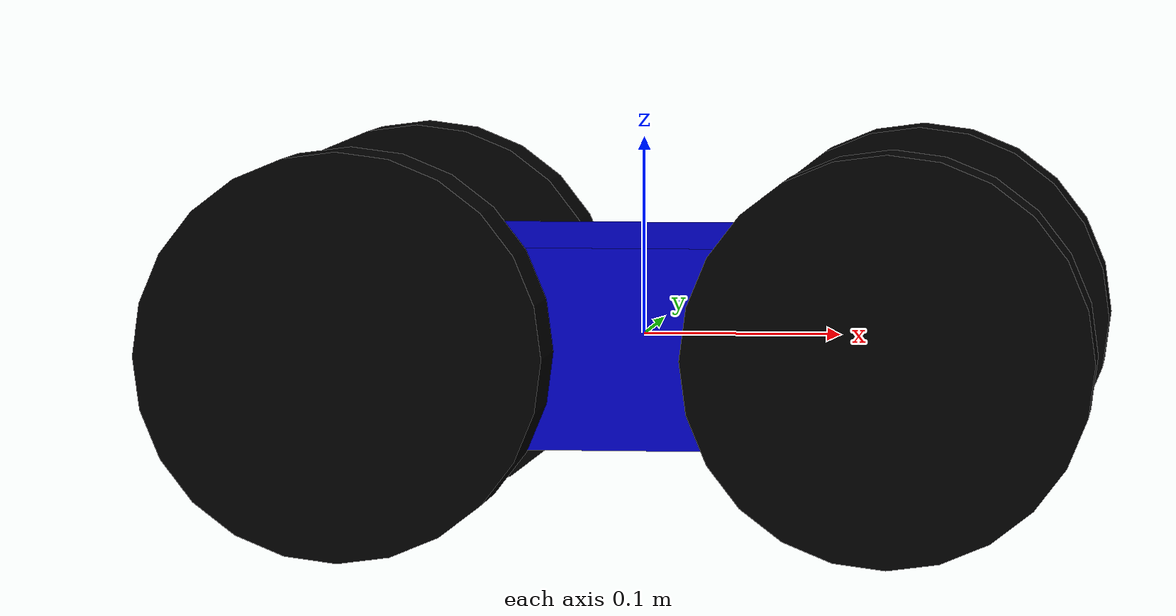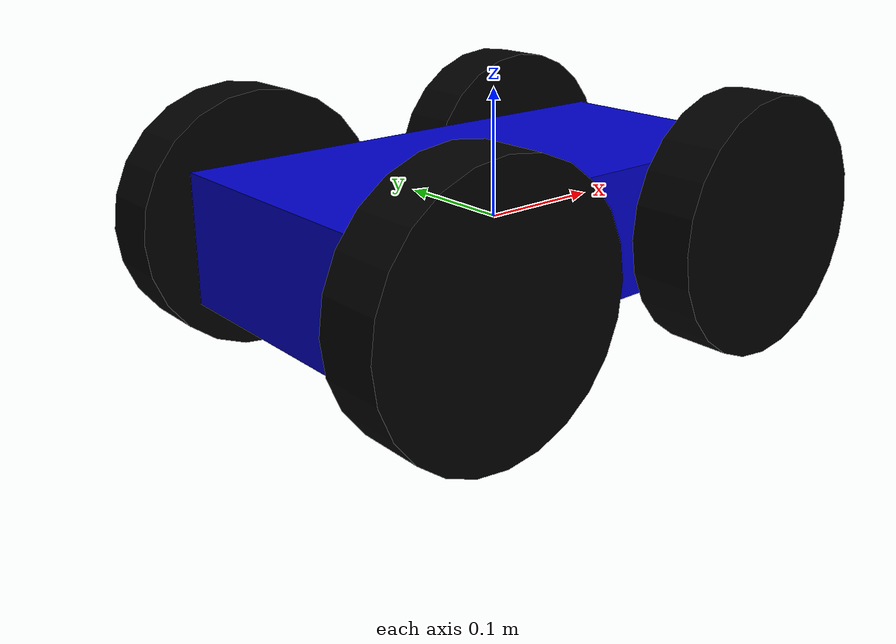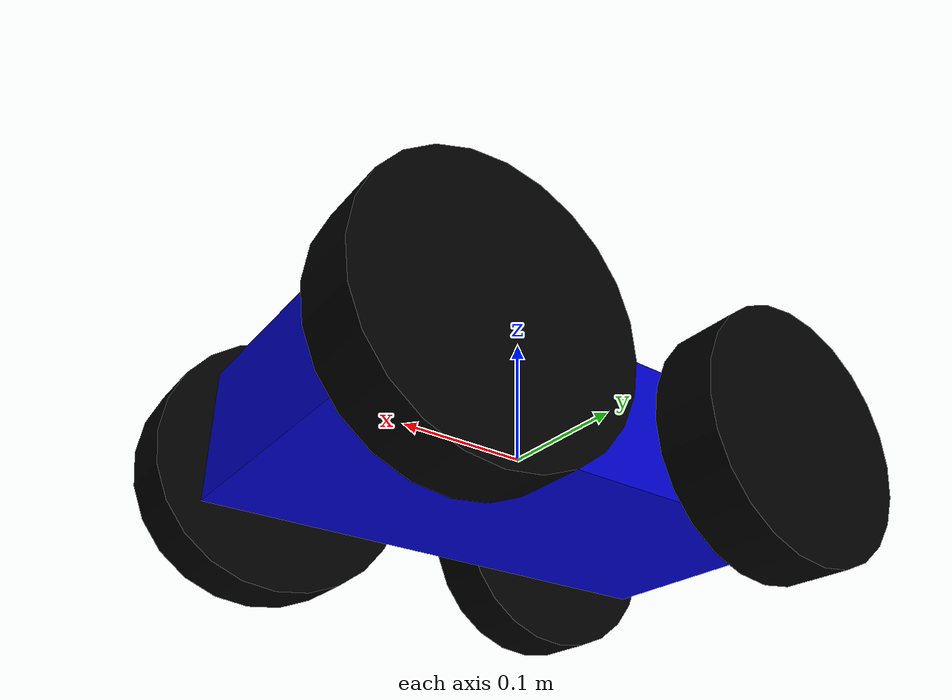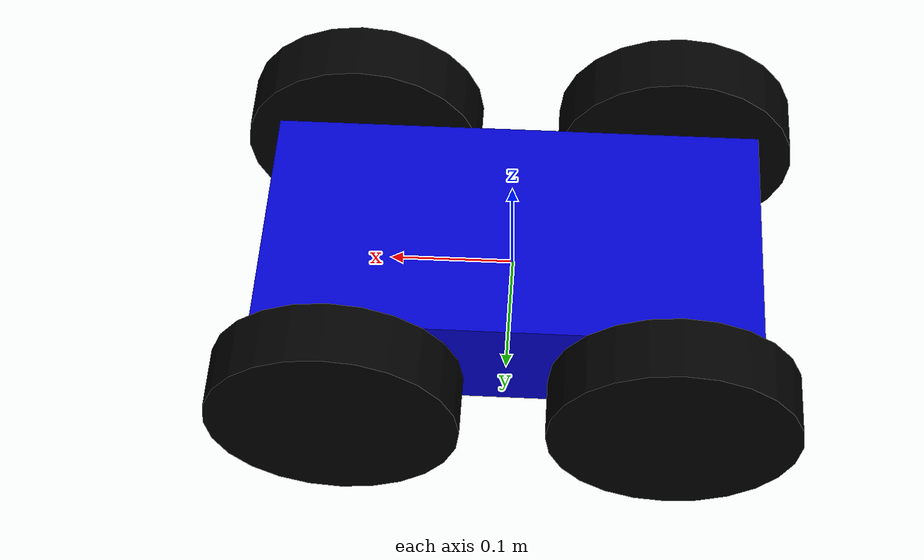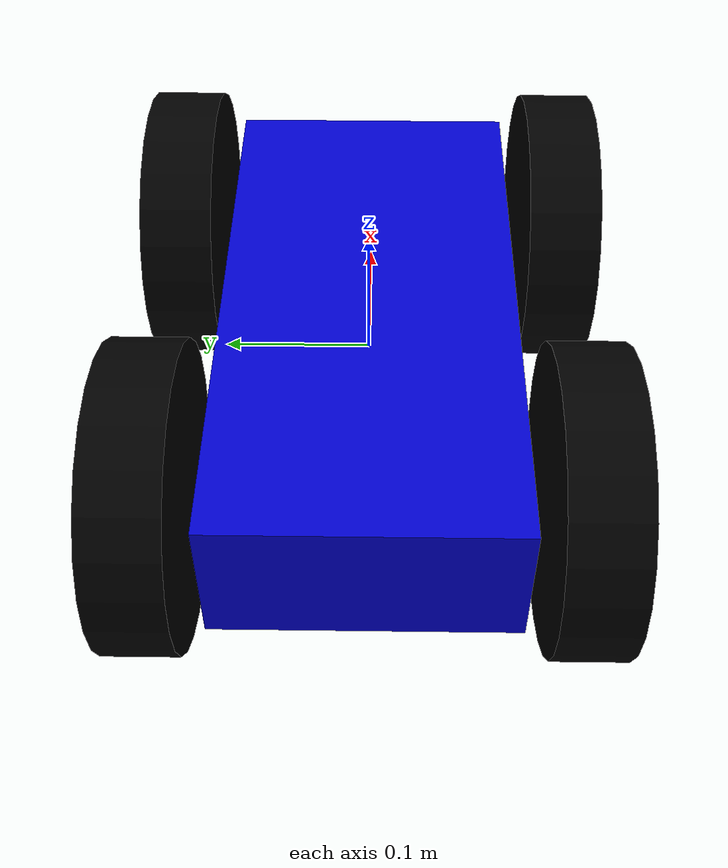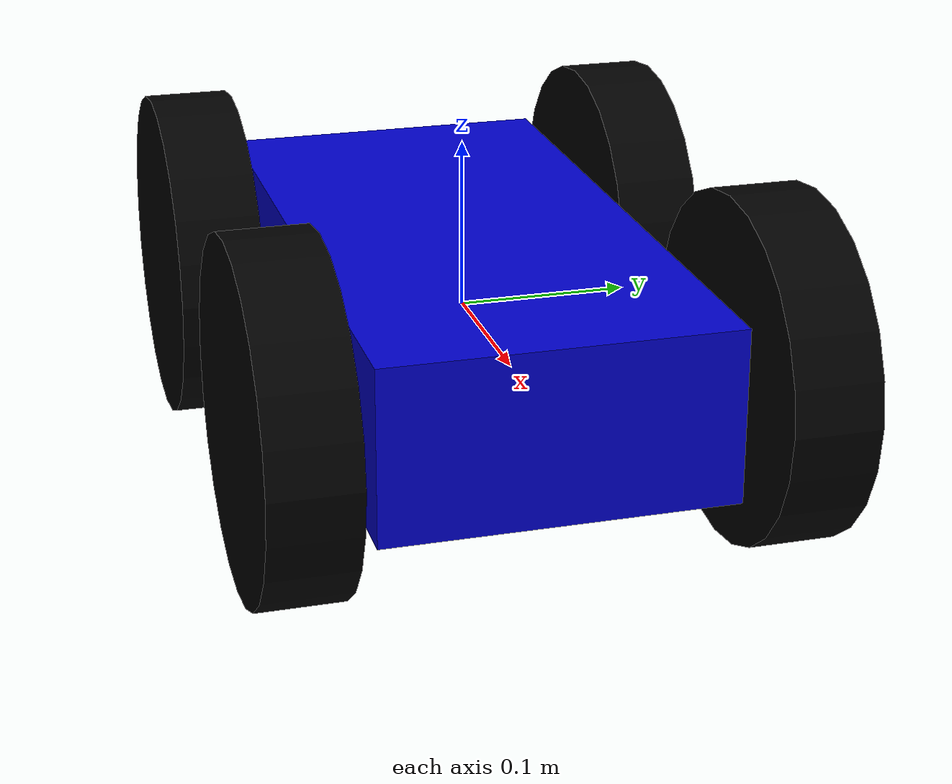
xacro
<?xml version="1.0"?>
<robot name="roscontrol" xmlns:xacro="http://ros.org/wiki/xacro">

  <xacro:property name="width" value="0.2" />
  <xacro:property name="leglen" value="0.25" />
  <xacro:property name="polelen" value="0.2" />
  <xacro:property name="bodylen" value="0.4" />
  <xacro:property name="height" value="0.1" />

  <xacro:property name="baselen" value="0.4" />
  <xacro:property name="wheeldiam" value="0.2" />
  <xacro:property name="wheelwidth" value="0.05" />
  <xacro:property name="pi" value="3.1415" />

  <material name="blue">
    <color rgba="0 0 0.8 1"/>
  </material>

  <material name="black">
    <color rgba="0 0 0 1"/>
  </material>

  <material name="white">
    <color rgba="1 1 1 1"/>
  </material>

  <xacro:macro name="default_inertial" params="mass">
    <inertial>
      <mass value="${mass}" />
      <inertia ixx="1.0" ixy="0.0" ixz="0.0" iyy="1.0" iyz="0.0" izz="1.0" />
    </inertial>
  </xacro:macro>

  <link name="base_link">
    <visual>
      <geometry>
        <box size="${bodylen} ${width} ${height}" />
      </geometry>
      <material name="blue"/>
    </visual>
    <collision>
      <geometry>
        <box size="${bodylen} ${width} ${height}" />
      </geometry>
    </collision>
    <!-- comment out inertial mass for base_link since it causes error -->
    <xacro:default_inertial mass="10"/>
  </link>

    <link name="inertial_base_link">

      <xacro:default_inertial mass="10"/>

    </link>
    <joint name="inertial_base_link_joint" type="fixed">
      <axis xyz="0 0 0" rpy="0 0 0" />
      <parent link="base_link"/>

      <child link="inertial_base_link"/>
      <origin xyz="0 0 0" rpy="0 0 0"/>
    </joint>

  <xacro:macro name="wheel" params="prefix suffix reflect reflect2">

    <link name="${prefix}_${suffix}_wheel">
      <visual>
        <origin xyz="0 0 0" rpy="${pi/2} 0 0" />
        <geometry>
          <cylinder radius="${wheeldiam/2}" length="${wheelwidth}"/>
        </geometry>
        <material name="black"/>
      </visual>
      <collision>
        <origin xyz="0 0 0" rpy="${pi/2} 0 0" />
        <geometry>
          <cylinder radius="${wheeldiam/2}" length="${wheelwidth}"/>
        </geometry>
      </collision>
      <xacro:default_inertial mass="1"/>
    </link>
    <joint name="${prefix}_${suffix}_wheel_joint" type="continuous">
      <axis xyz="0 1 0" rpy="0 0 0" />
      <parent link="base_link"/>

      <child link="${prefix}_${suffix}_wheel"/>
      <origin xyz="${baselen*reflect/3} ${(width+wheelwidth/2+.05)*reflect2/2} 0" rpy="0 0 0"/>
    </joint>

    <!-- This block provides the simulator (Gazebo) with information on a few additional
    physical properties. See http://gazebosim.org/tutorials/?tut=ros_urdf for more-->
    <gazebo reference="${prefix}_${suffix}_wheel">
      <mu1 value="200.0"/>
      <mu2 value="100.0"/>
      <kp value="10000000.0" />
      <kd value="1.0" />
      <material>Gazebo/Grey</material>
    </gazebo>

    <!-- This block connects the wheel joint to an actuator (motor), which informs both
    simulation and visualization of the robot -->
    <transmission name="${prefix}_${suffix}_wheel_trans">
      <type>transmission_interface/SimpleTransmission</type>
      <actuator name="${prefix}_${suffix}_wheel_motor">
        <mechanicalReduction>1</mechanicalReduction>
      </actuator>
      <joint name="${prefix}_${suffix}_wheel_joint">
        <hardwareInterface>hardware_interface/VelocityJointInterface</hardwareInterface>
      </joint>
    </transmission>

  </xacro:macro>

    <xacro:wheel prefix="right" suffix="front" reflect="1" reflect2="-1"/>
    <xacro:wheel prefix="right" suffix="back" reflect="-1" reflect2="-1"/>
    <xacro:wheel prefix="left" suffix="front" reflect="1" reflect2="1"/>
    <xacro:wheel prefix="left" suffix="back" reflect="-1" reflect2="1"/>

  <!-- This block connects the head_swivel joint to an actuator (motor), which informs both
  simulation and visualization of the robot -->

  <!-- Gazebo plugin for ROS Control -->
  <gazebo>
    <plugin name="gazebo_ros_control" filename="libgazebo_ros_control.so">
      <robotNamespace>/</robotNamespace>
    </plugin>

    <plugin name="oavg_gps_sim" filename="libhector_gazebo_ros_gps.so">
      <alwaysOn>1</alwaysOn>
      <updateRate>10.0</updateRate>
      <robotNamespace>oavg</robotNamespace>
      <bodyName>base_link</bodyName>
      <topicName>fix</topicName>
      <velocityTopicName>fix_velocity</velocityTopicName>
      <referenceHeading>90.0</referenceHeading>
      <referenceLatitude>45.407869</referenceLatitude>
      <referenceLongitude>-75.719062</referenceLongitude>
      <drift>0.0 0.0 0.0</drift>
      <gaussianNoise>0.0 0.0 0.0</gaussianNoise>
      <velocityDrift>0 0 0</velocityDrift>
      <velocityGaussianNoise>0.0 0.0 0.0</velocityGaussianNoise>
    </plugin>

    <plugin name="oavg_mag_sim" filename="libhector_gazebo_ros_magnetic.so">
      <alwaysOn>1</alwaysOn>
      <updateRate>10.0</updateRate>
      <robotNamespace>oavg</robotNamespace>
      <bodyName>base_link</bodyName>
      <topicName>magnetic</topicName>
      <referenceHeading>90.0</referenceHeading>

    </plugin>

  </gazebo>

</robot>
